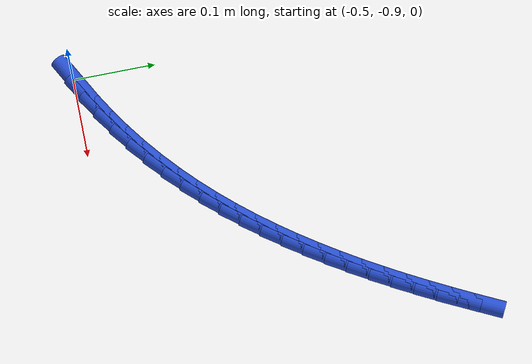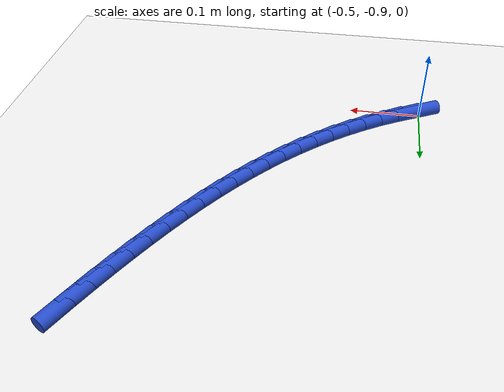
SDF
<sdf version="1.6">
 <world name="default">
  <model name="ground_plane">
   <static>1</static>
   <link name="link">
    <collision name="collision">
     <geometry><plane><normal>0 0 1</normal><size>100 100</size></plane></geometry>
     <surface><friction><ode><mu>100</mu><mu2>50</mu2></ode></friction></surface>
    </collision>
    <visual name="visual">
     <cast_shadows>0</cast_shadows>
     <geometry><plane><normal>0 0 1</normal><size>100 100</size></plane></geometry>
     <material>
      <script><uri>file://media/materials/scripts/gazebo.material</uri><name>Gazebo/WhiteGlow</name></script>
     </material>
    </visual>
   </link>
  </model>
  <model name="line">
   <link name="link_201">
    <pose>-0.48925528805439056 -0.8948263945932301 0.01 0 1.57 0.48127510928507733</pose>
    <collision name="collision">
     <geometry><cylinder><radius>0.01</radius><length>0.08</length></cylinder></geometry>
    </collision>
    <visual name="visual">
     <material>
      <script><name>Gazebo/Blue</name><uri>file://media/materials/scripts/gazebo.material</uri></script>
     </material>
     <geometry><cylinder><radius>0.01</radius><length>0.08</length></cylinder></geometry>
    </visual>
   </link>
   <link name="link_202">
    <pose>-0.46513760135917415 -0.8822313516160151 0.01 0 1.57 0.5284819120929584</pose>
    <collision name="collision">
     <geometry><cylinder><radius>0.01</radius><length>0.08</length></cylinder></geometry>
    </collision>
    <visual name="visual">
     <material>
      <script><name>Gazebo/Blue</name><uri>file://media/materials/scripts/gazebo.material</uri></script>
     </material>
     <geometry><cylinder><radius>0.01</radius><length>0.08</length></cylinder></geometry>
    </visual>
   </link>
   <link name="link_203">
    <pose>-0.44155746184640216 -0.8684633897152751 0.01 0 1.57 0.5740620937915314</pose>
    <collision name="collision">
     <geometry><cylinder><radius>0.01</radius><length>0.08</length></cylinder></geometry>
    </collision>
    <visual name="visual">
     <material>
      <script><name>Gazebo/Blue</name><uri>file://media/materials/scripts/gazebo.material</uri></script>
     </material>
     <geometry><cylinder><radius>0.01</radius><length>0.08</length></cylinder></geometry>
    </visual>
   </link>
   <link name="link_204">
    <pose>-0.4185723779623743 -0.8535986024284666 0.01 0 1.57 0.6182814936313599</pose>
    <collision name="collision">
     <geometry><cylinder><radius>0.01</radius><length>0.08</length></cylinder></geometry>
    </collision>
    <visual name="visual">
     <material>
      <script><name>Gazebo/Blue</name><uri>file://media/materials/scripts/gazebo.material</uri></script>
     </material>
     <geometry><cylinder><radius>0.01</radius><length>0.08</length></cylinder></geometry>
    </visual>
   </link>
   <link name="link_205">
    <pose>-0.3962398581533907 -0.8377130832930464 0.01 0 1.57 0.6614089857465457</pose>
    <collision name="collision">
     <geometry><cylinder><radius>0.01</radius><length>0.08</length></cylinder></geometry>
    </collision>
    <visual name="visual">
     <material>
      <script><name>Gazebo/Blue</name><uri>file://media/materials/scripts/gazebo.material</uri></script>
     </material>
     <geometry><cylinder><radius>0.01</radius><length>0.08</length></cylinder></geometry>
    </visual>
   </link>
   <link name="link_206">
    <pose>-0.37461741086575084 -0.8208829258464705 0.01 0 1.57 0.7037159275158154</pose>
    <collision name="collision">
     <geometry><cylinder><radius>0.01</radius><length>0.08</length></cylinder></geometry>
    </collision>
    <visual name="visual">
     <material>
      <script><name>Gazebo/Blue</name><uri>file://media/materials/scripts/gazebo.material</uri></script>
     </material>
     <geometry><cylinder><radius>0.01</radius><length>0.08</length></cylinder></geometry>
    </visual>
   </link>
   <link name="link_207">
    <pose>-0.3537625445457546 -0.8031842236261957 0.01 0 1.57 0.7452420815932487</pose>
    <collision name="collision">
     <geometry><cylinder><radius>0.01</radius><length>0.08</length></cylinder></geometry>
    </collision>
    <visual name="visual">
     <material>
      <script><name>Gazebo/Blue</name><uri>file://media/materials/scripts/gazebo.material</uri></script>
     </material>
     <geometry><cylinder><radius>0.01</radius><length>0.08</length></cylinder></geometry>
    </visual>
   </link>
   <link name="link_208">
    <pose>-0.3337192459832115 -0.78468930135924 0.01 0 1.57 0.7850124903731643</pose>
    <collision name="collision">
     <geometry><cylinder><radius>0.01</radius><length>0.08</length></cylinder></geometry>
    </collision>
    <visual name="visual">
     <material>
      <script><name>Gazebo/Blue</name><uri>file://media/materials/scripts/gazebo.material</uri></script>
     </material>
     <geometry><cylinder><radius>0.01</radius><length>0.08</length></cylinder></geometry>
    </visual>
   </link>
   <link name="link_209">
    <pose>-0.3144678407012013 -0.7654527398485172 0.01 0 1.57 0.822618901131939</pose>
    <collision name="collision">
     <geometry><cylinder><radius>0.01</radius><length>0.08</length></cylinder></geometry>
    </collision>
    <visual name="visual">
     <material>
      <script><name>Gazebo/Blue</name><uri>file://media/materials/scripts/gazebo.material</uri></script>
     </material>
     <geometry><cylinder><radius>0.01</radius><length>0.08</length></cylinder></geometry>
    </visual>
   </link>
   <link name="link_210">
    <pose>-0.29596993609135425 -0.7455239027041186 0.01 0 1.57 0.8579854025757686</pose>
    <collision name="collision">
     <geometry><cylinder><radius>0.01</radius><length>0.08</length></cylinder></geometry>
    </collision>
    <visual name="visual">
     <material>
      <script><name>Gazebo/Blue</name><uri>file://media/materials/scripts/gazebo.material</uri></script>
     </material>
     <geometry><cylinder><radius>0.01</radius><length>0.08</length></cylinder></geometry>
    </visual>
   </link>
   <link name="link_211">
    <pose>-0.27818713699504616 -0.7249521528253174 0.01 0 1.57 0.8910669576948749</pose>
    <collision name="collision">
     <geometry><cylinder><radius>0.01</radius><length>0.08</length></cylinder></geometry>
    </collision>
    <visual name="visual">
     <material>
      <script><name>Gazebo/Blue</name><uri>file://media/materials/scripts/gazebo.material</uri></script>
     </material>
     <geometry><cylinder><radius>0.01</radius><length>0.08</length></cylinder></geometry>
    </visual>
   </link>
   <link name="link_212">
    <pose>-0.2610810482536525 -0.7037868531113873 0.01 0 1.57 0.921844396152957</pose>
    <collision name="collision">
     <geometry><cylinder><radius>0.01</radius><length>0.08</length></cylinder></geometry>
    </collision>
    <visual name="visual">
     <material>
      <script><name>Gazebo/Blue</name><uri>file://media/materials/scripts/gazebo.material</uri></script>
     </material>
     <geometry><cylinder><radius>0.01</radius><length>0.08</length></cylinder></geometry>
    </visual>
   </link>
   <link name="link_213">
    <pose>-0.24461327470854935 -0.6820773664616031 0.01 0 1.57 0.9503192936544151</pose>
    <collision name="collision">
     <geometry><cylinder><radius>0.01</radius><length>0.08</length></cylinder></geometry>
    </collision>
    <visual name="visual">
     <material>
      <script><name>Gazebo/Blue</name><uri>file://media/materials/scripts/gazebo.material</uri></script>
     </material>
     <geometry><cylinder><radius>0.01</radius><length>0.08</length></cylinder></geometry>
    </visual>
   </link>
   <link name="link_214">
    <pose>-0.2287454212011123 -0.6598730557752377 0.01 0 1.57 0.9765090064831564</pose>
    <collision name="collision">
     <geometry><cylinder><radius>0.01</radius><length>0.08</length></cylinder></geometry>
    </collision>
    <visual name="visual">
     <material>
      <script><name>Gazebo/Blue</name><uri>file://media/materials/scripts/gazebo.material</uri></script>
     </material>
     <geometry><cylinder><radius>0.01</radius><length>0.08</length></cylinder></geometry>
    </visual>
   </link>
   <link name="link_215">
    <pose>-0.21343909257271665 -0.6372232839515648 0.01 0 1.57 1.000442069644538</pose>
    <collision name="collision">
     <geometry><cylinder><radius>0.01</radius><length>0.08</length></cylinder></geometry>
    </collision>
    <visual name="visual">
     <material>
      <script><name>Gazebo/Blue</name><uri>file://media/materials/scripts/gazebo.material</uri></script>
     </material>
     <geometry><cylinder><radius>0.01</radius><length>0.08</length></cylinder></geometry>
    </visual>
   </link>
   <link name="link_216">
    <pose>-0.19865589366473915 -0.6141774138898596 0.01 0 1.57 1.022154076024863</pose>
    <collision name="collision">
     <geometry><cylinder><radius>0.01</radius><length>0.08</length></cylinder></geometry>
    </collision>
    <visual name="visual">
     <material>
      <script><name>Gazebo/Blue</name><uri>file://media/materials/scripts/gazebo.material</uri></script>
     </material>
     <geometry><cylinder><radius>0.01</radius><length>0.08</length></cylinder></geometry>
    </visual>
   </link>
   <link name="link_217">
    <pose>-0.18435742931855495 -0.5907848084893951 0.01 0 1.57 1.0416840819368511</pose>
    <collision name="collision">
     <geometry><cylinder><radius>0.01</radius><length>0.08</length></cylinder></geometry>
    </collision>
    <visual name="visual">
     <material>
      <script><name>Gazebo/Blue</name><uri>file://media/materials/scripts/gazebo.material</uri></script>
     </material>
     <geometry><cylinder><radius>0.01</radius><length>0.08</length></cylinder></geometry>
    </visual>
   </link>
   <link name="link_218">
    <pose>-0.17050530437553996 -0.5670948306494452 0.01 0 1.57 1.0590715323397246</pose>
    <collision name="collision">
     <geometry><cylinder><radius>0.01</radius><length>0.08</length></cylinder></geometry>
    </collision>
    <visual name="visual">
     <material>
      <script><name>Gazebo/Blue</name><uri>file://media/materials/scripts/gazebo.material</uri></script>
     </material>
     <geometry><cylinder><radius>0.01</radius><length>0.08</length></cylinder></geometry>
    </visual>
   </link>
   <link name="link_219">
    <pose>-0.15706112367706976 -0.5431568432692838 0.01 0 1.57 1.0743536648971261</pose>
    <collision name="collision">
     <geometry><cylinder><radius>0.01</radius><length>0.08</length></cylinder></geometry>
    </collision>
    <visual name="visual">
     <material>
      <script><name>Gazebo/Blue</name><uri>file://media/materials/scripts/gazebo.material</uri></script>
     </material>
     <geometry><cylinder><radius>0.01</radius><length>0.08</length></cylinder></geometry>
    </visual>
   </link>
   <link name="link_220">
    <pose>-0.14398649206452022 -0.5190202092481847 0.01 0 1.57 1.0875701766714359</pose>
    <collision name="collision">
     <geometry><cylinder><radius>0.01</radius><length>0.08</length></cylinder></geometry>
    </collision>
    <visual name="visual">
     <material>
      <script><name>Gazebo/Blue</name><uri>file://media/materials/scripts/gazebo.material</uri></script>
     </material>
     <geometry><cylinder><radius>0.01</radius><length>0.08</length></cylinder></geometry>
    </visual>
   </link>
   <link name="link_221">
    <pose>-0.13124316827741125 -0.49473418078735987 0.01 0 1.57 1.0999356819229895</pose>
    <collision name="collision">
     <geometry><cylinder><radius>0.01</radius><length>0.08</length></cylinder></geometry>
    </collision>
    <visual name="visual">
     <material>
      <script><name>Gazebo/Blue</name><uri>file://media/materials/scripts/gazebo.material</uri></script>
     </material>
     <geometry><cylinder><radius>0.01</radius><length>0.08</length></cylinder></geometry>
    </visual>
   </link>
  </model>
 </world>
</sdf>
